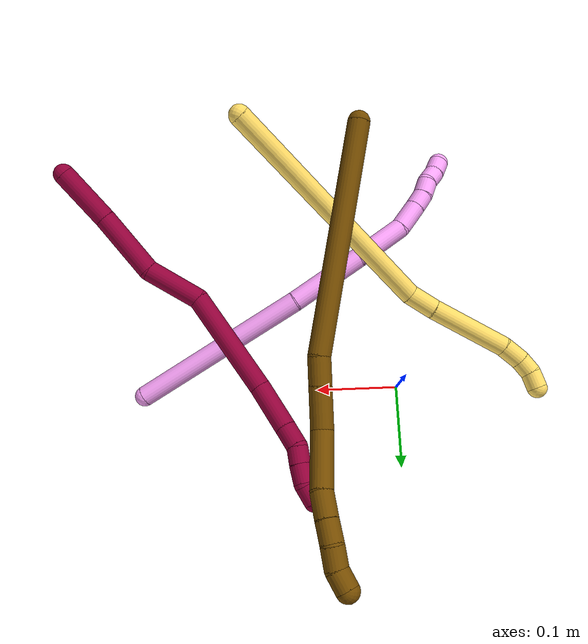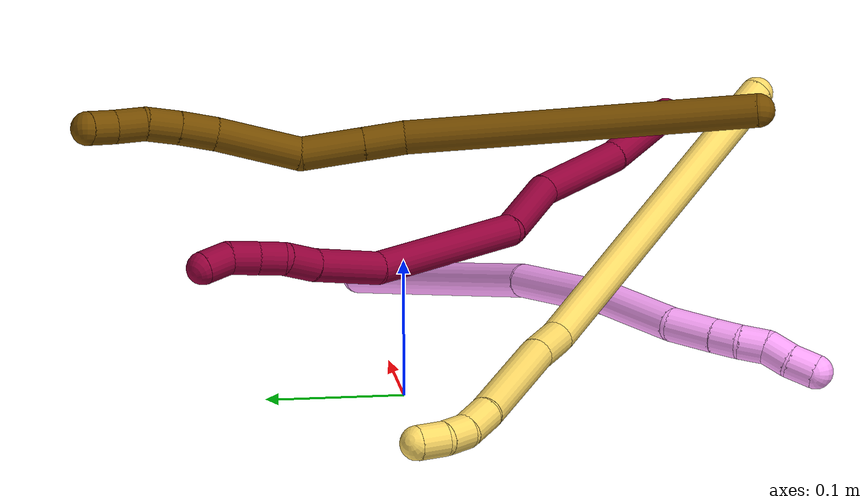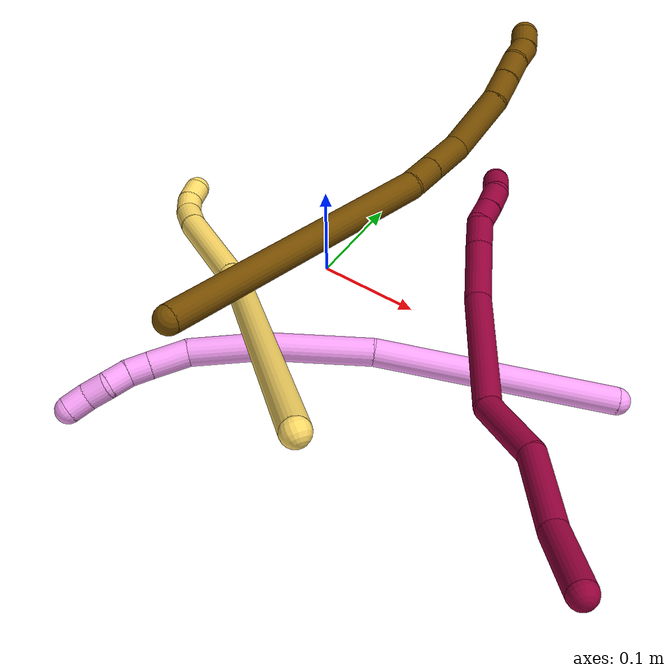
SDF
<sdf version="1.7">
 <world name="default">
  <model name="4">
   <static>0</static>
   <link name="4">
    <collision name="collision-cylinder-e_1_1_4">
     <pose>-0.071578 -0.064236 -0.054795 2.27705 -0.703193 -1.34349</pose>
     <geometry><cylinder><radius>0.0125</radius><length>0.221379</length></cylinder></geometry>
     <surface>
      <friction><ode><mu>1.16</mu><mu2>1.16</mu2><slip1>0</slip1><slip2>0</slip2></ode></friction>
      <contact><ode><kp>1e+06</kp><kd>1</kd><max_vel>0</max_vel><min_depth>0.001</min_depth></ode></contact>
     </surface>
    </collision>
    <visual name="visual-cylinder-e_1_1_4">
     <pose>-0.071578 -0.064236 -0.054795 2.27705 -0.703193 -1.34349</pose>
     <geometry><cylinder><radius>0.0125</radius><length>0.221379</length></cylinder></geometry>
     <material><ambient>1 0.65098 0.996078 1</ambient></material>
    </visual>
    <collision name="collision-cylinder-e_2_4_5">
     <pose>-0.170381 -0.161442 -0.12969 2.11828 -0.6141 -1.02806</pose>
     <geometry><cylinder><radius>0.0125</radius><length>0.094493</length></cylinder></geometry>
     <surface>
      <friction><ode><mu>1.16</mu><mu2>1.16</mu2><slip1>0</slip1><slip2>0</slip2></ode></friction>
      <contact><ode><kp>1e+06</kp><kd>1</kd><max_vel>0</max_vel><min_depth>0.001</min_depth></ode></contact>
     </surface>
    </collision>
    <visual name="visual-cylinder-e_2_4_5">
     <pose>-0.170381 -0.161442 -0.12969 2.11828 -0.6141 -1.02806</pose>
     <geometry><cylinder><radius>0.0125</radius><length>0.094493</length></cylinder></geometry>
     <material><ambient>1 0.65098 0.996078 1</ambient></material>
    </visual>
    <collision name="collision-cylinder-e_3_5_6">
     <pose>-0.213878 -0.221742 -0.162287 1.99966 -0.496289 -0.751419</pose>
     <geometry><cylinder><radius>0.0125</radius><length>0.068348</length></cylinder></geometry>
     <surface>
      <friction><ode><mu>1.16</mu><mu2>1.16</mu2><slip1>0</slip1><slip2>0</slip2></ode></friction>
      <contact><ode><kp>1e+06</kp><kd>1</kd><max_vel>0</max_vel><min_depth>0.001</min_depth></ode></contact>
     </surface>
    </collision>
    <visual name="visual-cylinder-e_3_5_6">
     <pose>-0.213878 -0.221742 -0.162287 1.99966 -0.496289 -0.751419</pose>
     <geometry><cylinder><radius>0.0125</radius><length>0.068348</length></cylinder></geometry>
     <material><ambient>1 0.65098 0.996078 1</ambient></material>
    </visual>
    <collision name="collision-cylinder-e_4_6_7">
     <pose>-0.239555 -0.264052 -0.175936 1.64759 -0.559287 -0.601417</pose>
     <geometry><cylinder><radius>0.0125</radius><length>0.035452</length></cylinder></geometry>
     <surface>
      <friction><ode><mu>1.16</mu><mu2>1.16</mu2><slip1>0</slip1><slip2>0</slip2></ode></friction>
      <contact><ode><kp>1e+06</kp><kd>1</kd><max_vel>0</max_vel><min_depth>0.001</min_depth></ode></contact>
     </surface>
    </collision>
    <visual name="visual-cylinder-e_4_6_7">
     <pose>-0.239555 -0.264052 -0.175936 1.64759 -0.559287 -0.601417</pose>
     <geometry><cylinder><radius>0.0125</radius><length>0.035452</length></cylinder></geometry>
     <material><ambient>1 0.65098 0.996078 1</ambient></material>
    </visual>
    <collision name="collision-cylinder-e_5_7_8">
     <pose>-0.254431 -0.287499 -0.177401 1.60769 -0.573443 -0.593778</pose>
     <geometry><cylinder><radius>0.0125</radius><length>0.020168</length></cylinder></geometry>
     <surface>
      <friction><ode><mu>1.16</mu><mu2>1.16</mu2><slip1>0</slip1><slip2>0</slip2></ode></friction>
      <contact><ode><kp>1e+06</kp><kd>1</kd><max_vel>0</max_vel><min_depth>0.001</min_depth></ode></contact>
     </surface>
    </collision>
    <visual name="visual-cylinder-e_5_7_8">
     <pose>-0.254431 -0.287499 -0.177401 1.60769 -0.573443 -0.593778</pose>
     <geometry><cylinder><radius>0.0125</radius><length>0.020168</length></cylinder></geometry>
     <material><ambient>1 0.65098 0.996078 1</ambient></material>
    </visual>
    <collision name="collision-cylinder-e_6_8_9">
     <pose>-0.265263 -0.304254 -0.17568 1.33023 -0.560764 -0.444272</pose>
     <geometry><cylinder><radius>0.0125</radius><length>0.02016</length></cylinder></geometry>
     <surface>
      <friction><ode><mu>1.16</mu><mu2>1.16</mu2><slip1>0</slip1><slip2>0</slip2></ode></friction>
      <contact><ode><kp>1e+06</kp><kd>1</kd><max_vel>0</max_vel><min_depth>0.001</min_depth></ode></contact>
     </surface>
    </collision>
    <visual name="visual-cylinder-e_6_8_9">
     <pose>-0.265263 -0.304254 -0.17568 1.33023 -0.560764 -0.444272</pose>
     <geometry><cylinder><radius>0.0125</radius><length>0.02016</length></cylinder></geometry>
     <material><ambient>1 0.65098 0.996078 1</ambient></material>
    </visual>
    <collision name="collision-cylinder-e_7_9_10">
     <pose>-0.273346 -0.322163 -0.173923 1.59963 -0.275687 -0.283647</pose>
     <geometry><cylinder><radius>0.0125</radius><length>0.02</length></cylinder></geometry>
     <surface>
      <friction><ode><mu>1.16</mu><mu2>1.16</mu2><slip1>0</slip1><slip2>0</slip2></ode></friction>
      <contact><ode><kp>1e+06</kp><kd>1</kd><max_vel>0</max_vel><min_depth>0.001</min_depth></ode></contact>
     </surface>
    </collision>
    <visual name="visual-cylinder-e_7_9_10">
     <pose>-0.273346 -0.322163 -0.173923 1.59963 -0.275687 -0.283647</pose>
     <geometry><cylinder><radius>0.0125</radius><length>0.02</length></cylinder></geometry>
     <material><ambient>1 0.65098 0.996078 1</ambient></material>
    </visual>
    <collision name="collision-cylinder-e_8_10_2">
     <pose>-0.27961 -0.341012 -0.172701 1.40971 -0.362074 -0.308918</pose>
     <geometry><cylinder><radius>0.0125</radius><length>0.02</length></cylinder></geometry>
     <surface>
      <friction><ode><mu>1.16</mu><mu2>1.16</mu2><slip1>0</slip1><slip2>0</slip2></ode></friction>
      <contact><ode><kp>1e+06</kp><kd>1</kd><max_vel>0</max_vel><min_depth>0.001</min_depth></ode></contact>
     </surface>
    </collision>
    <visual name="visual-cylinder-e_8_10_2">
     <pose>-0.27961 -0.341012 -0.172701 1.40971 -0.362074 -0.308918</pose>
     <geometry><cylinder><radius>0.0125</radius><length>0.02</length></cylinder></geometry>
     <material><ambient>1 0.65098 0.996078 1</ambient></material>
    </visual>
    <collision name="collision-sphere-2">
     <pose>-0.283152 -0.350242 -0.171201 0 -0 0</pose>
     <geometry><sphere><radius>0.0125</radius></sphere></geometry>
     <surface>
      <friction><ode><mu>1.16</mu><mu2>1.16</mu2><slip1>0</slip1><slip2>0</slip2></ode></friction>
      <contact><ode><kp>1e+06</kp><kd>1</kd><max_vel>0</max_vel><min_depth>0.001</min_depth></ode></contact>
     </surface>
    </collision>
    <visual name="visual-sphere-2">
     <pose>-0.283152 -0.350242 -0.171201 0 -0 0</pose>
     <geometry><sphere><radius>0.0125</radius></sphere></geometry>
     <material><ambient>1 0.65098 0.996078 1</ambient></material>
    </visual>
    <collision name="collision-sphere-10">
     <pose>-0.276068 -0.331781 -0.174201 0 -0 0</pose>
     <geometry><sphere><radius>0.0125</radius></sphere></geometry>
     <surface>
      <friction><ode><mu>1.16</mu><mu2>1.16</mu2><slip1>0</slip1><slip2>0</slip2></ode></friction>
      <contact><ode><kp>1e+06</kp><kd>1</kd><max_vel>0</max_vel><min_depth>0.001</min_depth></ode></contact>
     </surface>
    </collision>
    <visual name="visual-sphere-10">
     <pose>-0.276068 -0.331781 -0.174201 0 -0 0</pose>
     <geometry><sphere><radius>0.0125</radius></sphere></geometry>
     <material><ambient>1 0.65098 0.996078 1</ambient></material>
    </visual>
    <collision name="collision-sphere-9">
     <pose>-0.270624 -0.312545 -0.173646 0 -0 0</pose>
     <geometry><sphere><radius>0.0125</radius></sphere></geometry>
     <surface>
      <friction><ode><mu>1.16</mu><mu2>1.16</mu2><slip1>0</slip1><slip2>0</slip2></ode></friction>
      <contact><ode><kp>1e+06</kp><kd>1</kd><max_vel>0</max_vel><min_depth>0.001</min_depth></ode></contact>
     </surface>
    </collision>
    <visual name="visual-sphere-9">
     <pose>-0.270624 -0.312545 -0.173646 0 -0 0</pose>
     <geometry><sphere><radius>0.0125</radius></sphere></geometry>
     <material><ambient>1 0.65098 0.996078 1</ambient></material>
    </visual>
    <collision name="collision-sphere-4">
     <pose>-0.143156 -0.128471 -0.10959 0 -0 0</pose>
     <geometry><sphere><radius>0.0125</radius></sphere></geometry>
     <surface>
      <friction><ode><mu>1.16</mu><mu2>1.16</mu2><slip1>0</slip1><slip2>0</slip2></ode></friction>
      <contact><ode><kp>1e+06</kp><kd>1</kd><max_vel>0</max_vel><min_depth>0.001</min_depth></ode></contact>
     </surface>
    </collision>
    <visual name="visual-sphere-4">
     <pose>-0.143156 -0.128471 -0.10959 0 -0 0</pose>
     <geometry><sphere><radius>0.0125</radius></sphere></geometry>
     <material><ambient>1 0.65098 0.996078 1</ambient></material>
    </visual>
    <collision name="collision-sphere-1">
     <geometry><sphere><radius>0.0125</radius></sphere></geometry>
     <surface>
      <friction><ode><mu>1.16</mu><mu2>1.16</mu2><slip1>0</slip1><slip2>0</slip2></ode></friction>
      <contact><ode><kp>1e+06</kp><kd>1</kd><max_vel>0</max_vel><min_depth>0.001</min_depth></ode></contact>
     </surface>
    </collision>
    <visual name="visual-sphere-1">
     <geometry><sphere><radius>0.0125</radius></sphere></geometry>
     <material><ambient>1 0.65098 0.996078 1</ambient></material>
    </visual>
    <collision name="collision-sphere-8">
     <pose>-0.259902 -0.295964 -0.177713 0 -0 0</pose>
     <geometry><sphere><radius>0.0125</radius></sphere></geometry>
     <surface>
      <friction><ode><mu>1.16</mu><mu2>1.16</mu2><slip1>0</slip1><slip2>0</slip2></ode></friction>
      <contact><ode><kp>1e+06</kp><kd>1</kd><max_vel>0</max_vel><min_depth>0.001</min_depth></ode></contact>
     </surface>
    </collision>
    <visual name="visual-sphere-8">
     <pose>-0.259902 -0.295964 -0.177713 0 -0 0</pose>
     <geometry><sphere><radius>0.0125</radius></sphere></geometry>
     <material><ambient>1 0.65098 0.996078 1</ambient></material>
    </visual>
    <collision name="collision-sphere-5">
     <pose>-0.197605 -0.194412 -0.14979 0 -0 0</pose>
     <geometry><sphere><radius>0.0125</radius></sphere></geometry>
     <surface>
      <friction><ode><mu>1.16</mu><mu2>1.16</mu2><slip1>0</slip1><slip2>0</slip2></ode></friction>
      <contact><ode><kp>1e+06</kp><kd>1</kd><max_vel>0</max_vel><min_depth>0.001</min_depth></ode></contact>
     </surface>
    </collision>
    <visual name="visual-sphere-5">
     <pose>-0.197605 -0.194412 -0.14979 0 -0 0</pose>
     <geometry><sphere><radius>0.0125</radius></sphere></geometry>
     <material><ambient>1 0.65098 0.996078 1</ambient></material>
    </visual>
    <collision name="collision-sphere-6">
     <pose>-0.23015 -0.249071 -0.174783 0 -0 0</pose>
     <geometry><sphere><radius>0.0125</radius></sphere></geometry>
     <surface>
      <friction><ode><mu>1.16</mu><mu2>1.16</mu2><slip1>0</slip1><slip2>0</slip2></ode></friction>
      <contact><ode><kp>1e+06</kp><kd>1</kd><max_vel>0</max_vel><min_depth>0.001</min_depth></ode></contact>
     </surface>
    </collision>
    <visual name="visual-sphere-6">
     <pose>-0.23015 -0.249071 -0.174783 0 -0 0</pose>
     <geometry><sphere><radius>0.0125</radius></sphere></geometry>
     <material><ambient>1 0.65098 0.996078 1</ambient></material>
    </visual>
    <collision name="collision-sphere-7">
     <pose>-0.24896 -0.279033 -0.177088 0 -0 0</pose>
     <geometry><sphere><radius>0.0125</radius></sphere></geometry>
     <surface>
      <friction><ode><mu>1.16</mu><mu2>1.16</mu2><slip1>0</slip1><slip2>0</slip2></ode></friction>
      <contact><ode><kp>1e+06</kp><kd>1</kd><max_vel>0</max_vel><min_depth>0.001</min_depth></ode></contact>
     </surface>
    </collision>
    <visual name="visual-sphere-7">
     <pose>-0.24896 -0.279033 -0.177088 0 -0 0</pose>
     <geometry><sphere><radius>0.0125</radius></sphere></geometry>
     <material><ambient>1 0.65098 0.996078 1</ambient></material>
    </visual>
    <inertial>
     <pose>-0.153189 -0.158376 -0.111533 0 -0 0</pose>
     <mass>0.5</mass>
     <inertia>
      <ixx>-0.000559</ixx>
      <ixy>0</ixy>
      <ixz>0</ixz>
      <iyy>-0.000462</iyy>
      <iyz>0</iyz>
      <izz>0.001253</izz>
     </inertia>
    </inertial>
   </link>
   <pose>0.314451 -0.000854 0.011774 1.72758 0.881052 1.12341</pose>
  </model>
  <model name="5">
   <static>0</static>
   <link name="5">
    <collision name="collision-cylinder-e_1_1_4">
     <pose>-0.100143 0.053439 -0.094796 -2.62827 -0.743891 1.95716</pose>
     <geometry><cylinder><radius>0.0125</radius><length>0.295775</length></cylinder></geometry>
     <surface>
      <friction><ode><mu>1.16</mu><mu2>1.16</mu2><slip1>0</slip1><slip2>0</slip2></ode></friction>
      <contact><ode><kp>1e+06</kp><kd>1</kd><max_vel>0</max_vel><min_depth>0.001</min_depth></ode></contact>
     </surface>
    </collision>
    <visual name="visual-cylinder-e_1_1_4">
     <pose>-0.100143 0.053439 -0.094796 -2.62827 -0.743891 1.95716</pose>
     <geometry><cylinder><radius>0.0125</radius><length>0.295775</length></cylinder></geometry>
     <material><ambient>1 0.858824 0.4 1</ambient></material>
    </visual>
    <collision name="collision-cylinder-e_2_4_5">
     <pose>-0.207329 0.112442 -0.204763 -2.79011 -0.411046 1.7305</pose>
     <geometry><cylinder><radius>0.0125</radius><length>0.035253</length></cylinder></geometry>
     <surface>
      <friction><ode><mu>1.16</mu><mu2>1.16</mu2><slip1>0</slip1><slip2>0</slip2></ode></friction>
      <contact><ode><kp>1e+06</kp><kd>1</kd><max_vel>0</max_vel><min_depth>0.001</min_depth></ode></contact>
     </surface>
    </collision>
    <visual name="visual-cylinder-e_2_4_5">
     <pose>-0.207329 0.112442 -0.204763 -2.79011 -0.411046 1.7305</pose>
     <geometry><cylinder><radius>0.0125</radius><length>0.035253</length></cylinder></geometry>
     <material><ambient>1 0.858824 0.4 1</ambient></material>
    </visual>
    <collision name="collision-cylinder-e_3_5_6">
     <pose>-0.233085 0.138073 -0.261732 -2.69399 -0.383602 1.41264</pose>
     <geometry><cylinder><radius>0.0125</radius><length>0.100001</length></cylinder></geometry>
     <surface>
      <friction><ode><mu>1.16</mu><mu2>1.16</mu2><slip1>0</slip1><slip2>0</slip2></ode></friction>
      <contact><ode><kp>1e+06</kp><kd>1</kd><max_vel>0</max_vel><min_depth>0.001</min_depth></ode></contact>
     </surface>
    </collision>
    <visual name="visual-cylinder-e_3_5_6">
     <pose>-0.233085 0.138073 -0.261732 -2.69399 -0.383602 1.41264</pose>
     <geometry><cylinder><radius>0.0125</radius><length>0.100001</length></cylinder></geometry>
     <material><ambient>1 0.858824 0.4 1</ambient></material>
    </visual>
    <collision name="collision-cylinder-e_4_6_7">
     <pose>-0.259034 0.162336 -0.314703 -2.78232 -0.54505 1.98917</pose>
     <geometry><cylinder><radius>0.0125</radius><length>0.027913</length></cylinder></geometry>
     <surface>
      <friction><ode><mu>1.16</mu><mu2>1.16</mu2><slip1>0</slip1><slip2>0</slip2></ode></friction>
      <contact><ode><kp>1e+06</kp><kd>1</kd><max_vel>0</max_vel><min_depth>0.001</min_depth></ode></contact>
     </surface>
    </collision>
    <visual name="visual-cylinder-e_4_6_7">
     <pose>-0.259034 0.162336 -0.314703 -2.78232 -0.54505 1.98917</pose>
     <geometry><cylinder><radius>0.0125</radius><length>0.027913</length></cylinder></geometry>
     <material><ambient>1 0.858824 0.4 1</ambient></material>
    </visual>
    <collision name="collision-cylinder-e_5_7_8">
     <pose>-0.271741 0.166501 -0.334337 3.13789 -0.57395 -3.12904</pose>
     <geometry><cylinder><radius>0.0125</radius><length>0.020153</length></cylinder></geometry>
     <surface>
      <friction><ode><mu>1.16</mu><mu2>1.16</mu2><slip1>0</slip1><slip2>0</slip2></ode></friction>
      <contact><ode><kp>1e+06</kp><kd>1</kd><max_vel>0</max_vel><min_depth>0.001</min_depth></ode></contact>
     </surface>
    </collision>
    <visual name="visual-cylinder-e_5_7_8">
     <pose>-0.271741 0.166501 -0.334337 3.13789 -0.57395 -3.12904</pose>
     <geometry><cylinder><radius>0.0125</radius><length>0.020153</length></cylinder></geometry>
     <material><ambient>1 0.858824 0.4 1</ambient></material>
    </visual>
    <collision name="collision-cylinder-e_6_8_2">
     <pose>-0.28405 0.163564 -0.350151 2.76522 -0.713114 -2.19633</pose>
     <geometry><cylinder><radius>0.0125</radius><length>0.020906</length></cylinder></geometry>
     <surface>
      <friction><ode><mu>1.16</mu><mu2>1.16</mu2><slip1>0</slip1><slip2>0</slip2></ode></friction>
      <contact><ode><kp>1e+06</kp><kd>1</kd><max_vel>0</max_vel><min_depth>0.001</min_depth></ode></contact>
     </surface>
    </collision>
    <visual name="visual-cylinder-e_6_8_2">
     <pose>-0.28405 0.163564 -0.350151 2.76522 -0.713114 -2.19633</pose>
     <geometry><cylinder><radius>0.0125</radius><length>0.020906</length></cylinder></geometry>
     <material><ambient>1 0.858824 0.4 1</ambient></material>
    </visual>
    <collision name="collision-sphere-2">
     <pose>-0.290888 0.160658 -0.357504 0 -0 0</pose>
     <geometry><sphere><radius>0.0125</radius></sphere></geometry>
     <surface>
      <friction><ode><mu>1.16</mu><mu2>1.16</mu2><slip1>0</slip1><slip2>0</slip2></ode></friction>
      <contact><ode><kp>1e+06</kp><kd>1</kd><max_vel>0</max_vel><min_depth>0.001</min_depth></ode></contact>
     </surface>
    </collision>
    <visual name="visual-sphere-2">
     <pose>-0.290888 0.160658 -0.357504 0 -0 0</pose>
     <geometry><sphere><radius>0.0125</radius></sphere></geometry>
     <material><ambient>1 0.858824 0.4 1</ambient></material>
    </visual>
    <collision name="collision-sphere-4">
     <pose>-0.200285 0.106879 -0.189592 0 -0 0</pose>
     <geometry><sphere><radius>0.0125</radius></sphere></geometry>
     <surface>
      <friction><ode><mu>1.16</mu><mu2>1.16</mu2><slip1>0</slip1><slip2>0</slip2></ode></friction>
      <contact><ode><kp>1e+06</kp><kd>1</kd><max_vel>0</max_vel><min_depth>0.001</min_depth></ode></contact>
     </surface>
    </collision>
    <visual name="visual-sphere-4">
     <pose>-0.200285 0.106879 -0.189592 0 -0 0</pose>
     <geometry><sphere><radius>0.0125</radius></sphere></geometry>
     <material><ambient>1 0.858824 0.4 1</ambient></material>
    </visual>
    <collision name="collision-sphere-1">
     <geometry><sphere><radius>0.0125</radius></sphere></geometry>
     <surface>
      <friction><ode><mu>1.16</mu><mu2>1.16</mu2><slip1>0</slip1><slip2>0</slip2></ode></friction>
      <contact><ode><kp>1e+06</kp><kd>1</kd><max_vel>0</max_vel><min_depth>0.001</min_depth></ode></contact>
     </surface>
    </collision>
    <visual name="visual-sphere-1">
     <geometry><sphere><radius>0.0125</radius></sphere></geometry>
     <material><ambient>1 0.858824 0.4 1</ambient></material>
    </visual>
    <collision name="collision-sphere-8">
     <pose>-0.277212 0.16647 -0.342799 0 -0 0</pose>
     <geometry><sphere><radius>0.0125</radius></sphere></geometry>
     <surface>
      <friction><ode><mu>1.16</mu><mu2>1.16</mu2><slip1>0</slip1><slip2>0</slip2></ode></friction>
      <contact><ode><kp>1e+06</kp><kd>1</kd><max_vel>0</max_vel><min_depth>0.001</min_depth></ode></contact>
     </surface>
    </collision>
    <visual name="visual-sphere-8">
     <pose>-0.277212 0.16647 -0.342799 0 -0 0</pose>
     <geometry><sphere><radius>0.0125</radius></sphere></geometry>
     <material><ambient>1 0.858824 0.4 1</ambient></material>
    </visual>
    <collision name="collision-sphere-5">
     <pose>-0.214372 0.118005 -0.219933 0 -0 0</pose>
     <geometry><sphere><radius>0.0125</radius></sphere></geometry>
     <surface>
      <friction><ode><mu>1.16</mu><mu2>1.16</mu2><slip1>0</slip1><slip2>0</slip2></ode></friction>
      <contact><ode><kp>1e+06</kp><kd>1</kd><max_vel>0</max_vel><min_depth>0.001</min_depth></ode></contact>
     </surface>
    </collision>
    <visual name="visual-sphere-5">
     <pose>-0.214372 0.118005 -0.219933 0 -0 0</pose>
     <geometry><sphere><radius>0.0125</radius></sphere></geometry>
     <material><ambient>1 0.858824 0.4 1</ambient></material>
    </visual>
    <collision name="collision-sphere-6">
     <pose>-0.251798 0.15814 -0.303531 0 -0 0</pose>
     <geometry><sphere><radius>0.0125</radius></sphere></geometry>
     <surface>
      <friction><ode><mu>1.16</mu><mu2>1.16</mu2><slip1>0</slip1><slip2>0</slip2></ode></friction>
      <contact><ode><kp>1e+06</kp><kd>1</kd><max_vel>0</max_vel><min_depth>0.001</min_depth></ode></contact>
     </surface>
    </collision>
    <visual name="visual-sphere-6">
     <pose>-0.251798 0.15814 -0.303531 0 -0 0</pose>
     <geometry><sphere><radius>0.0125</radius></sphere></geometry>
     <material><ambient>1 0.858824 0.4 1</ambient></material>
    </visual>
    <collision name="collision-sphere-7">
     <pose>-0.26627 0.166532 -0.325875 0 -0 0</pose>
     <geometry><sphere><radius>0.0125</radius></sphere></geometry>
     <surface>
      <friction><ode><mu>1.16</mu><mu2>1.16</mu2><slip1>0</slip1><slip2>0</slip2></ode></friction>
      <contact><ode><kp>1e+06</kp><kd>1</kd><max_vel>0</max_vel><min_depth>0.001</min_depth></ode></contact>
     </surface>
    </collision>
    <visual name="visual-sphere-7">
     <pose>-0.26627 0.166532 -0.325875 0 -0 0</pose>
     <geometry><sphere><radius>0.0125</radius></sphere></geometry>
     <material><ambient>1 0.858824 0.4 1</ambient></material>
    </visual>
    <inertial>
     <pose>-0.157765 0.089767 -0.168545 0 -0 0</pose>
     <mass>0.5</mass>
     <inertia>
      <ixx>0.000949</ixx>
      <ixy>0</ixy>
      <ixz>0</ixz>
      <iyy>0.002962</iyy>
      <iyz>0</iyz>
      <izz>0.000658</izz>
     </inertia>
    </inertial>
   </link>
   <pose>0.175127 -0.28694 0.178814 -2.148 -0.799485 -1.7102</pose>
  </model>
  <model name="8">
   <static>0</static>
   <link name="8">
    <collision name="collision-cylinder-e_1_1_4">
     <pose>0.001886 0.000698 -0.034141 -3.12116 0.055166 -2.43222</pose>
     <geometry><cylinder><radius>0.0125</radius><length>0.068401</length></cylinder></geometry>
     <surface>
      <friction><ode><mu>1.16</mu><mu2>1.16</mu2><slip1>0</slip1><slip2>0</slip2></ode></friction>
      <contact><ode><kp>1e+06</kp><kd>1</kd><max_vel>0</max_vel><min_depth>0.001</min_depth></ode></contact>
     </surface>
    </collision>
    <visual name="visual-cylinder-e_1_1_4">
     <pose>0.001886 0.000698 -0.034141 -3.12116 0.055166 -2.43222</pose>
     <geometry><cylinder><radius>0.0125</radius><length>0.068401</length></cylinder></geometry>
     <material><ambient>0.584314 0 0.227451 1</ambient></material>
    </visual>
    <collision name="collision-cylinder-e_2_4_5">
     <pose>0.00181 0.00843 -0.10786 -2.9657 -0.048756 0.539584</pose>
     <geometry><cylinder><radius>0.0125</radius><length>0.080492</length></cylinder></geometry>
     <surface>
      <friction><ode><mu>1.16</mu><mu2>1.16</mu2><slip1>0</slip1><slip2>0</slip2></ode></friction>
      <contact><ode><kp>1e+06</kp><kd>1</kd><max_vel>0</max_vel><min_depth>0.001</min_depth></ode></contact>
     </surface>
    </collision>
    <visual name="visual-cylinder-e_2_4_5">
     <pose>0.00181 0.00843 -0.10786 -2.9657 -0.048756 0.539584</pose>
     <geometry><cylinder><radius>0.0125</radius><length>0.080492</length></cylinder></geometry>
     <material><ambient>0.584314 0 0.227451 1</ambient></material>
    </visual>
    <collision name="collision-cylinder-e_3_5_6">
     <pose>-0.00667 0.009884 -0.180335 2.97357 -0.192946 -1.70944</pose>
     <geometry><cylinder><radius>0.0125</radius><length>0.067995</length></cylinder></geometry>
     <surface>
      <friction><ode><mu>1.16</mu><mu2>1.16</mu2><slip1>0</slip1><slip2>0</slip2></ode></friction>
      <contact><ode><kp>1e+06</kp><kd>1</kd><max_vel>0</max_vel><min_depth>0.001</min_depth></ode></contact>
     </surface>
    </collision>
    <visual name="visual-cylinder-e_3_5_6">
     <pose>-0.00667 0.009884 -0.180335 2.97357 -0.192946 -1.70944</pose>
     <geometry><cylinder><radius>0.0125</radius><length>0.067995</length></cylinder></geometry>
     <material><ambient>0.584314 0 0.227451 1</ambient></material>
    </visual>
    <collision name="collision-cylinder-e_4_6_7">
     <pose>-0.017642 0.024419 -0.275182 -2.82764 -0.068246 0.42484</pose>
     <geometry><cylinder><radius>0.0125</radius><length>0.130571</length></cylinder></geometry>
     <surface>
      <friction><ode><mu>1.16</mu><mu2>1.16</mu2><slip1>0</slip1><slip2>0</slip2></ode></friction>
      <contact><ode><kp>1e+06</kp><kd>1</kd><max_vel>0</max_vel><min_depth>0.001</min_depth></ode></contact>
     </surface>
    </collision>
    <visual name="visual-cylinder-e_4_6_7">
     <pose>-0.017642 0.024419 -0.275182 -2.82764 -0.068246 0.42484</pose>
     <geometry><cylinder><radius>0.0125</radius><length>0.130571</length></cylinder></geometry>
     <material><ambient>0.584314 0 0.227451 1</ambient></material>
    </visual>
    <collision name="collision-cylinder-e_5_7_8">
     <pose>-0.028908 0.059126 -0.362255 -2.61537 -0.230381 0.811436</pose>
     <geometry><cylinder><radius>0.0125</radius><length>0.059684</length></cylinder></geometry>
     <surface>
      <friction><ode><mu>1.16</mu><mu2>1.16</mu2><slip1>0</slip1><slip2>0</slip2></ode></friction>
      <contact><ode><kp>1e+06</kp><kd>1</kd><max_vel>0</max_vel><min_depth>0.001</min_depth></ode></contact>
     </surface>
    </collision>
    <visual name="visual-cylinder-e_5_7_8">
     <pose>-0.028908 0.059126 -0.362255 -2.61537 -0.230381 0.811436</pose>
     <geometry><cylinder><radius>0.0125</radius><length>0.059684</length></cylinder></geometry>
     <material><ambient>0.584314 0 0.227451 1</ambient></material>
    </visual>
    <collision name="collision-cylinder-e_6_8_9">
     <pose>-0.039948 0.08134 -0.397936 -2.51638 -0.313781 0.910342</pose>
     <geometry><cylinder><radius>0.0125</radius><length>0.02738</length></cylinder></geometry>
     <surface>
      <friction><ode><mu>1.16</mu><mu2>1.16</mu2><slip1>0</slip1><slip2>0</slip2></ode></friction>
      <contact><ode><kp>1e+06</kp><kd>1</kd><max_vel>0</max_vel><min_depth>0.001</min_depth></ode></contact>
     </surface>
    </collision>
    <visual name="visual-cylinder-e_6_8_9">
     <pose>-0.039948 0.08134 -0.397936 -2.51638 -0.313781 0.910342</pose>
     <geometry><cylinder><radius>0.0125</radius><length>0.02738</length></cylinder></geometry>
     <material><ambient>0.584314 0 0.227451 1</ambient></material>
    </visual>
    <collision name="collision-cylinder-e_7_9_10">
     <pose>-0.043111 0.095907 -0.415773 -2.37954 0.105242 -0.261452</pose>
     <geometry><cylinder><radius>0.0125</radius><length>0.020234</length></cylinder></geometry>
     <surface>
      <friction><ode><mu>1.16</mu><mu2>1.16</mu2><slip1>0</slip1><slip2>0</slip2></ode></friction>
      <contact><ode><kp>1e+06</kp><kd>1</kd><max_vel>0</max_vel><min_depth>0.001</min_depth></ode></contact>
     </surface>
    </collision>
    <visual name="visual-cylinder-e_7_9_10">
     <pose>-0.043111 0.095907 -0.415773 -2.37954 0.105242 -0.261452</pose>
     <geometry><cylinder><radius>0.0125</radius><length>0.020234</length></cylinder></geometry>
     <material><ambient>0.584314 0 0.227451 1</ambient></material>
    </visual>
    <collision name="collision-cylinder-e_8_10_11">
     <pose>-0.041421 0.110174 -0.43161 -2.43404 0.055616 -0.150349</pose>
     <geometry><cylinder><radius>0.0125</radius><length>0.02256</length></cylinder></geometry>
     <surface>
      <friction><ode><mu>1.16</mu><mu2>1.16</mu2><slip1>0</slip1><slip2>0</slip2></ode></friction>
      <contact><ode><kp>1e+06</kp><kd>1</kd><max_vel>0</max_vel><min_depth>0.001</min_depth></ode></contact>
     </surface>
    </collision>
    <visual name="visual-cylinder-e_8_10_11">
     <pose>-0.041421 0.110174 -0.43161 -2.43404 0.055616 -0.150349</pose>
     <geometry><cylinder><radius>0.0125</radius><length>0.02256</length></cylinder></geometry>
     <material><ambient>0.584314 0 0.227451 1</ambient></material>
    </visual>
    <collision name="collision-cylinder-e_9_11_2">
     <pose>-0.039804 0.12073 -0.450994 -2.8511 0.087375 -0.580813</pose>
     <geometry><cylinder><radius>0.0125</radius><length>0.022683</length></cylinder></geometry>
     <surface>
      <friction><ode><mu>1.16</mu><mu2>1.16</mu2><slip1>0</slip1><slip2>0</slip2></ode></friction>
      <contact><ode><kp>1e+06</kp><kd>1</kd><max_vel>0</max_vel><min_depth>0.001</min_depth></ode></contact>
     </surface>
    </collision>
    <visual name="visual-cylinder-e_9_11_2">
     <pose>-0.039804 0.12073 -0.450994 -2.8511 0.087375 -0.580813</pose>
     <geometry><cylinder><radius>0.0125</radius><length>0.022683</length></cylinder></geometry>
     <material><ambient>0.584314 0 0.227451 1</ambient></material>
    </visual>
    <collision name="collision-sphere-2">
     <pose>-0.038814 0.123966 -0.461819 0 -0 0</pose>
     <geometry><sphere><radius>0.0125</radius></sphere></geometry>
     <surface>
      <friction><ode><mu>1.16</mu><mu2>1.16</mu2><slip1>0</slip1><slip2>0</slip2></ode></friction>
      <contact><ode><kp>1e+06</kp><kd>1</kd><max_vel>0</max_vel><min_depth>0.001</min_depth></ode></contact>
     </surface>
    </collision>
    <visual name="visual-sphere-2">
     <pose>-0.038814 0.123966 -0.461819 0 -0 0</pose>
     <geometry><sphere><radius>0.0125</radius></sphere></geometry>
     <material><ambient>0.584314 0 0.227451 1</ambient></material>
    </visual>
    <collision name="collision-sphere-11">
     <pose>-0.040794 0.117494 -0.440169 0 -0 0</pose>
     <geometry><sphere><radius>0.0125</radius></sphere></geometry>
     <surface>
      <friction><ode><mu>1.16</mu><mu2>1.16</mu2><slip1>0</slip1><slip2>0</slip2></ode></friction>
      <contact><ode><kp>1e+06</kp><kd>1</kd><max_vel>0</max_vel><min_depth>0.001</min_depth></ode></contact>
     </surface>
    </collision>
    <visual name="visual-sphere-11">
     <pose>-0.040794 0.117494 -0.440169 0 -0 0</pose>
     <geometry><sphere><radius>0.0125</radius></sphere></geometry>
     <material><ambient>0.584314 0 0.227451 1</ambient></material>
    </visual>
    <collision name="collision-sphere-10">
     <pose>-0.042048 0.102854 -0.423051 0 -0 0</pose>
     <geometry><sphere><radius>0.0125</radius></sphere></geometry>
     <surface>
      <friction><ode><mu>1.16</mu><mu2>1.16</mu2><slip1>0</slip1><slip2>0</slip2></ode></friction>
      <contact><ode><kp>1e+06</kp><kd>1</kd><max_vel>0</max_vel><min_depth>0.001</min_depth></ode></contact>
     </surface>
    </collision>
    <visual name="visual-sphere-10">
     <pose>-0.042048 0.102854 -0.423051 0 -0 0</pose>
     <geometry><sphere><radius>0.0125</radius></sphere></geometry>
     <material><ambient>0.584314 0 0.227451 1</ambient></material>
    </visual>
    <collision name="collision-sphere-9">
     <pose>-0.044173 0.088961 -0.408494 0 -0 0</pose>
     <geometry><sphere><radius>0.0125</radius></sphere></geometry>
     <surface>
      <friction><ode><mu>1.16</mu><mu2>1.16</mu2><slip1>0</slip1><slip2>0</slip2></ode></friction>
      <contact><ode><kp>1e+06</kp><kd>1</kd><max_vel>0</max_vel><min_depth>0.001</min_depth></ode></contact>
     </surface>
    </collision>
    <visual name="visual-sphere-9">
     <pose>-0.044173 0.088961 -0.408494 0 -0 0</pose>
     <geometry><sphere><radius>0.0125</radius></sphere></geometry>
     <material><ambient>0.584314 0 0.227451 1</ambient></material>
    </visual>
    <collision name="collision-sphere-4">
     <pose>0.003771 0.001396 -0.068282 0 -0 0</pose>
     <geometry><sphere><radius>0.0125</radius></sphere></geometry>
     <surface>
      <friction><ode><mu>1.16</mu><mu2>1.16</mu2><slip1>0</slip1><slip2>0</slip2></ode></friction>
      <contact><ode><kp>1e+06</kp><kd>1</kd><max_vel>0</max_vel><min_depth>0.001</min_depth></ode></contact>
     </surface>
    </collision>
    <visual name="visual-sphere-4">
     <pose>0.003771 0.001396 -0.068282 0 -0 0</pose>
     <geometry><sphere><radius>0.0125</radius></sphere></geometry>
     <material><ambient>0.584314 0 0.227451 1</ambient></material>
    </visual>
    <collision name="collision-sphere-1">
     <geometry><sphere><radius>0.0125</radius></sphere></geometry>
     <surface>
      <friction><ode><mu>1.16</mu><mu2>1.16</mu2><slip1>0</slip1><slip2>0</slip2></ode></friction>
      <contact><ode><kp>1e+06</kp><kd>1</kd><max_vel>0</max_vel><min_depth>0.001</min_depth></ode></contact>
     </surface>
    </collision>
    <visual name="visual-sphere-1">
     <geometry><sphere><radius>0.0125</radius></sphere></geometry>
     <material><ambient>0.584314 0 0.227451 1</ambient></material>
    </visual>
    <collision name="collision-sphere-8">
     <pose>-0.035722 0.073719 -0.387378 0 -0 0</pose>
     <geometry><sphere><radius>0.0125</radius></sphere></geometry>
     <surface>
      <friction><ode><mu>1.16</mu><mu2>1.16</mu2><slip1>0</slip1><slip2>0</slip2></ode></friction>
      <contact><ode><kp>1e+06</kp><kd>1</kd><max_vel>0</max_vel><min_depth>0.001</min_depth></ode></contact>
     </surface>
    </collision>
    <visual name="visual-sphere-8">
     <pose>-0.035722 0.073719 -0.387378 0 -0 0</pose>
     <geometry><sphere><radius>0.0125</radius></sphere></geometry>
     <material><ambient>0.584314 0 0.227451 1</ambient></material>
    </visual>
    <collision name="collision-sphere-5">
     <pose>-0.000151 0.015464 -0.147438 0 -0 0</pose>
     <geometry><sphere><radius>0.0125</radius></sphere></geometry>
     <surface>
      <friction><ode><mu>1.16</mu><mu2>1.16</mu2><slip1>0</slip1><slip2>0</slip2></ode></friction>
      <contact><ode><kp>1e+06</kp><kd>1</kd><max_vel>0</max_vel><min_depth>0.001</min_depth></ode></contact>
     </surface>
    </collision>
    <visual name="visual-sphere-5">
     <pose>-0.000151 0.015464 -0.147438 0 -0 0</pose>
     <geometry><sphere><radius>0.0125</radius></sphere></geometry>
     <material><ambient>0.584314 0 0.227451 1</ambient></material>
    </visual>
    <collision name="collision-sphere-6">
     <pose>-0.013189 0.004304 -0.213232 0 -0 0</pose>
     <geometry><sphere><radius>0.0125</radius></sphere></geometry>
     <surface>
      <friction><ode><mu>1.16</mu><mu2>1.16</mu2><slip1>0</slip1><slip2>0</slip2></ode></friction>
      <contact><ode><kp>1e+06</kp><kd>1</kd><max_vel>0</max_vel><min_depth>0.001</min_depth></ode></contact>
     </surface>
    </collision>
    <visual name="visual-sphere-6">
     <pose>-0.013189 0.004304 -0.213232 0 -0 0</pose>
     <geometry><sphere><radius>0.0125</radius></sphere></geometry>
     <material><ambient>0.584314 0 0.227451 1</ambient></material>
    </visual>
    <collision name="collision-sphere-7">
     <pose>-0.022094 0.044533 -0.337132 0 -0 0</pose>
     <geometry><sphere><radius>0.0125</radius></sphere></geometry>
     <surface>
      <friction><ode><mu>1.16</mu><mu2>1.16</mu2><slip1>0</slip1><slip2>0</slip2></ode></friction>
      <contact><ode><kp>1e+06</kp><kd>1</kd><max_vel>0</max_vel><min_depth>0.001</min_depth></ode></contact>
     </surface>
    </collision>
    <visual name="visual-sphere-7">
     <pose>-0.022094 0.044533 -0.337132 0 -0 0</pose>
     <geometry><sphere><radius>0.0125</radius></sphere></geometry>
     <material><ambient>0.584314 0 0.227451 1</ambient></material>
    </visual>
    <inertial>
     <pose>-0.016022 0.035015 -0.240212 0 -0 0</pose>
     <mass>0.5</mass>
     <inertia>
      <ixx>0.000274</ixx>
      <ixy>0</ixy>
      <ixz>0</ixz>
      <iyy>-0.000111</iyy>
      <iyz>0</iyz>
      <izz>-8.9e-05</izz>
     </inertia>
    </inertial>
   </link>
   <pose>0.387622 -0.252595 0.118635 1.06096 0.863925 0.378408</pose>
  </model>
  <model name="12">
   <static>0</static>
   <link name="12">
    <collision name="collision-cylinder-e_1_1_4">
     <pose>-0.014784 0.128755 -0.003792 -1.60024 -0.114271 0.117678</pose>
     <geometry><cylinder><radius>0.0125</radius><length>0.259312</length></cylinder></geometry>
     <surface>
      <friction><ode><mu>1.16</mu><mu2>1.16</mu2><slip1>0</slip1><slip2>0</slip2></ode></friction>
      <contact><ode><kp>1e+06</kp><kd>1</kd><max_vel>0</max_vel><min_depth>0.001</min_depth></ode></contact>
     </surface>
    </collision>
    <visual name="visual-cylinder-e_1_1_4">
     <pose>-0.014784 0.128755 -0.003792 -1.60024 -0.114271 0.117678</pose>
     <geometry><cylinder><radius>0.0125</radius><length>0.259312</length></cylinder></geometry>
     <material><ambient>0.466667 0.301961 0 1</ambient></material>
    </visual>
    <collision name="collision-cylinder-e_2_4_5">
     <pose>-0.033837 0.272221 -0.010014 -1.73449 -0.278884 0.327902</pose>
     <geometry><cylinder><radius>0.0125</radius><length>0.031021</length></cylinder></geometry>
     <surface>
      <friction><ode><mu>1.16</mu><mu2>1.16</mu2><slip1>0</slip1><slip2>0</slip2></ode></friction>
      <contact><ode><kp>1e+06</kp><kd>1</kd><max_vel>0</max_vel><min_depth>0.001</min_depth></ode></contact>
     </surface>
    </collision>
    <visual name="visual-cylinder-e_2_4_5">
     <pose>-0.033837 0.272221 -0.010014 -1.73449 -0.278884 0.327902</pose>
     <geometry><cylinder><radius>0.0125</radius><length>0.031021</length></cylinder></geometry>
     <material><ambient>0.466667 0.301961 0 1</ambient></material>
    </visual>
    <collision name="collision-cylinder-e_3_5_6">
     <pose>-0.044532 0.309076 -0.016101 -1.73449 -0.278834 0.327843</pose>
     <geometry><cylinder><radius>0.0125</radius><length>0.04669</length></cylinder></geometry>
     <surface>
      <friction><ode><mu>1.16</mu><mu2>1.16</mu2><slip1>0</slip1><slip2>0</slip2></ode></friction>
      <contact><ode><kp>1e+06</kp><kd>1</kd><max_vel>0</max_vel><min_depth>0.001</min_depth></ode></contact>
     </surface>
    </collision>
    <visual name="visual-cylinder-e_3_5_6">
     <pose>-0.044532 0.309076 -0.016101 -1.73449 -0.278834 0.327843</pose>
     <geometry><cylinder><radius>0.0125</radius><length>0.04669</length></cylinder></geometry>
     <material><ambient>0.466667 0.301961 0 1</ambient></material>
    </visual>
    <collision name="collision-cylinder-e_4_6_7">
     <pose>-0.063361 0.3599 -0.013082 -1.3421 -0.398645 0.318061</pose>
     <geometry><cylinder><radius>0.0125</radius><length>0.063905</length></cylinder></geometry>
     <surface>
      <friction><ode><mu>1.16</mu><mu2>1.16</mu2><slip1>0</slip1><slip2>0</slip2></ode></friction>
      <contact><ode><kp>1e+06</kp><kd>1</kd><max_vel>0</max_vel><min_depth>0.001</min_depth></ode></contact>
     </surface>
    </collision>
    <visual name="visual-cylinder-e_4_6_7">
     <pose>-0.063361 0.3599 -0.013082 -1.3421 -0.398645 0.318061</pose>
     <geometry><cylinder><radius>0.0125</radius><length>0.063905</length></cylinder></geometry>
     <material><ambient>0.466667 0.301961 0 1</ambient></material>
    </visual>
    <collision name="collision-cylinder-e_5_7_8">
     <pose>-0.083408 0.400545 -0.005018 -1.45528 -0.565488 0.506423</pose>
     <geometry><cylinder><radius>0.0125</radius><length>0.028532</length></cylinder></geometry>
     <surface>
      <friction><ode><mu>1.16</mu><mu2>1.16</mu2><slip1>0</slip1><slip2>0</slip2></ode></friction>
      <contact><ode><kp>1e+06</kp><kd>1</kd><max_vel>0</max_vel><min_depth>0.001</min_depth></ode></contact>
     </surface>
    </collision>
    <visual name="visual-cylinder-e_5_7_8">
     <pose>-0.083408 0.400545 -0.005018 -1.45528 -0.565488 0.506423</pose>
     <geometry><cylinder><radius>0.0125</radius><length>0.028532</length></cylinder></geometry>
     <material><ambient>0.466667 0.301961 0 1</ambient></material>
    </visual>
    <collision name="collision-cylinder-e_6_8_9">
     <pose>-0.097838 0.423044 -0.003026 -1.51358 -0.571568 0.54134</pose>
     <geometry><cylinder><radius>0.0125</radius><length>0.025092</length></cylinder></geometry>
     <surface>
      <friction><ode><mu>1.16</mu><mu2>1.16</mu2><slip1>0</slip1><slip2>0</slip2></ode></friction>
      <contact><ode><kp>1e+06</kp><kd>1</kd><max_vel>0</max_vel><min_depth>0.001</min_depth></ode></contact>
     </surface>
    </collision>
    <visual name="visual-cylinder-e_6_8_9">
     <pose>-0.097838 0.423044 -0.003026 -1.51358 -0.571568 0.54134</pose>
     <geometry><cylinder><radius>0.0125</radius><length>0.025092</length></cylinder></geometry>
     <material><ambient>0.466667 0.301961 0 1</ambient></material>
    </visual>
    <collision name="collision-cylinder-e_7_9_10">
     <pose>-0.109685 0.444101 -0.004081 -1.72711 -0.443478 0.515772</pose>
     <geometry><cylinder><radius>0.0125</radius><length>0.023585</length></cylinder></geometry>
     <surface>
      <friction><ode><mu>1.16</mu><mu2>1.16</mu2><slip1>0</slip1><slip2>0</slip2></ode></friction>
      <contact><ode><kp>1e+06</kp><kd>1</kd><max_vel>0</max_vel><min_depth>0.001</min_depth></ode></contact>
     </surface>
    </collision>
    <visual name="visual-cylinder-e_7_9_10">
     <pose>-0.109685 0.444101 -0.004081 -1.72711 -0.443478 0.515772</pose>
     <geometry><cylinder><radius>0.0125</radius><length>0.023585</length></cylinder></geometry>
     <material><ambient>0.466667 0.301961 0 1</ambient></material>
    </visual>
    <collision name="collision-cylinder-e_8_10_2">
     <pose>-0.122446 0.462153 -0.007606 -1.81381 -0.78171 0.96953</pose>
     <geometry><cylinder><radius>0.0125</radius><length>0.021863</length></cylinder></geometry>
     <surface>
      <friction><ode><mu>1.16</mu><mu2>1.16</mu2><slip1>0</slip1><slip2>0</slip2></ode></friction>
      <contact><ode><kp>1e+06</kp><kd>1</kd><max_vel>0</max_vel><min_depth>0.001</min_depth></ode></contact>
     </surface>
    </collision>
    <visual name="visual-cylinder-e_8_10_2">
     <pose>-0.122446 0.462153 -0.007606 -1.81381 -0.78171 0.96953</pose>
     <geometry><cylinder><radius>0.0125</radius><length>0.021863</length></cylinder></geometry>
     <material><ambient>0.466667 0.301961 0 1</ambient></material>
    </visual>
    <collision name="collision-sphere-2">
     <pose>-0.130148 0.469683 -0.009473 0 -0 0</pose>
     <geometry><sphere><radius>0.0125</radius></sphere></geometry>
     <surface>
      <friction><ode><mu>1.16</mu><mu2>1.16</mu2><slip1>0</slip1><slip2>0</slip2></ode></friction>
      <contact><ode><kp>1e+06</kp><kd>1</kd><max_vel>0</max_vel><min_depth>0.001</min_depth></ode></contact>
     </surface>
    </collision>
    <visual name="visual-sphere-2">
     <pose>-0.130148 0.469683 -0.009473 0 -0 0</pose>
     <geometry><sphere><radius>0.0125</radius></sphere></geometry>
     <material><ambient>0.466667 0.301961 0 1</ambient></material>
    </visual>
    <collision name="collision-sphere-10">
     <pose>-0.114745 0.454623 -0.005739 0 -0 0</pose>
     <geometry><sphere><radius>0.0125</radius></sphere></geometry>
     <surface>
      <friction><ode><mu>1.16</mu><mu2>1.16</mu2><slip1>0</slip1><slip2>0</slip2></ode></friction>
      <contact><ode><kp>1e+06</kp><kd>1</kd><max_vel>0</max_vel><min_depth>0.001</min_depth></ode></contact>
     </surface>
    </collision>
    <visual name="visual-sphere-10">
     <pose>-0.114745 0.454623 -0.005739 0 -0 0</pose>
     <geometry><sphere><radius>0.0125</radius></sphere></geometry>
     <material><ambient>0.466667 0.301961 0 1</ambient></material>
    </visual>
    <collision name="collision-sphere-9">
     <pose>-0.104625 0.433579 -0.002423 0 -0 0</pose>
     <geometry><sphere><radius>0.0125</radius></sphere></geometry>
     <surface>
      <friction><ode><mu>1.16</mu><mu2>1.16</mu2><slip1>0</slip1><slip2>0</slip2></ode></friction>
      <contact><ode><kp>1e+06</kp><kd>1</kd><max_vel>0</max_vel><min_depth>0.001</min_depth></ode></contact>
     </surface>
    </collision>
    <visual name="visual-sphere-9">
     <pose>-0.104625 0.433579 -0.002423 0 -0 0</pose>
     <geometry><sphere><radius>0.0125</radius></sphere></geometry>
     <material><ambient>0.466667 0.301961 0 1</ambient></material>
    </visual>
    <collision name="collision-sphere-4">
     <pose>-0.029567 0.257509 -0.007584 0 -0 0</pose>
     <geometry><sphere><radius>0.0125</radius></sphere></geometry>
     <surface>
      <friction><ode><mu>1.16</mu><mu2>1.16</mu2><slip1>0</slip1><slip2>0</slip2></ode></friction>
      <contact><ode><kp>1e+06</kp><kd>1</kd><max_vel>0</max_vel><min_depth>0.001</min_depth></ode></contact>
     </surface>
    </collision>
    <visual name="visual-sphere-4">
     <pose>-0.029567 0.257509 -0.007584 0 -0 0</pose>
     <geometry><sphere><radius>0.0125</radius></sphere></geometry>
     <material><ambient>0.466667 0.301961 0 1</ambient></material>
    </visual>
    <collision name="collision-sphere-1">
     <geometry><sphere><radius>0.0125</radius></sphere></geometry>
     <surface>
      <friction><ode><mu>1.16</mu><mu2>1.16</mu2><slip1>0</slip1><slip2>0</slip2></ode></friction>
      <contact><ode><kp>1e+06</kp><kd>1</kd><max_vel>0</max_vel><min_depth>0.001</min_depth></ode></contact>
     </surface>
    </collision>
    <visual name="visual-sphere-1">
     <geometry><sphere><radius>0.0125</radius></sphere></geometry>
     <material><ambient>0.466667 0.301961 0 1</ambient></material>
    </visual>
    <collision name="collision-sphere-8">
     <pose>-0.091052 0.41251 -0.00363 0 -0 0</pose>
     <geometry><sphere><radius>0.0125</radius></sphere></geometry>
     <surface>
      <friction><ode><mu>1.16</mu><mu2>1.16</mu2><slip1>0</slip1><slip2>0</slip2></ode></friction>
      <contact><ode><kp>1e+06</kp><kd>1</kd><max_vel>0</max_vel><min_depth>0.001</min_depth></ode></contact>
     </surface>
    </collision>
    <visual name="visual-sphere-8">
     <pose>-0.091052 0.41251 -0.00363 0 -0 0</pose>
     <geometry><sphere><radius>0.0125</radius></sphere></geometry>
     <material><ambient>0.466667 0.301961 0 1</ambient></material>
    </visual>
    <collision name="collision-sphere-5">
     <pose>-0.038107 0.286933 -0.012443 0 -0 0</pose>
     <geometry><sphere><radius>0.0125</radius></sphere></geometry>
     <surface>
      <friction><ode><mu>1.16</mu><mu2>1.16</mu2><slip1>0</slip1><slip2>0</slip2></ode></friction>
      <contact><ode><kp>1e+06</kp><kd>1</kd><max_vel>0</max_vel><min_depth>0.001</min_depth></ode></contact>
     </surface>
    </collision>
    <visual name="visual-sphere-5">
     <pose>-0.038107 0.286933 -0.012443 0 -0 0</pose>
     <geometry><sphere><radius>0.0125</radius></sphere></geometry>
     <material><ambient>0.466667 0.301961 0 1</ambient></material>
    </visual>
    <collision name="collision-sphere-6">
     <pose>-0.050957 0.331219 -0.019758 0 -0 0</pose>
     <geometry><sphere><radius>0.0125</radius></sphere></geometry>
     <surface>
      <friction><ode><mu>1.16</mu><mu2>1.16</mu2><slip1>0</slip1><slip2>0</slip2></ode></friction>
      <contact><ode><kp>1e+06</kp><kd>1</kd><max_vel>0</max_vel><min_depth>0.001</min_depth></ode></contact>
     </surface>
    </collision>
    <visual name="visual-sphere-6">
     <pose>-0.050957 0.331219 -0.019758 0 -0 0</pose>
     <geometry><sphere><radius>0.0125</radius></sphere></geometry>
     <material><ambient>0.466667 0.301961 0 1</ambient></material>
    </visual>
    <collision name="collision-sphere-7">
     <pose>-0.075764 0.38858 -0.006406 0 -0 0</pose>
     <geometry><sphere><radius>0.0125</radius></sphere></geometry>
     <surface>
      <friction><ode><mu>1.16</mu><mu2>1.16</mu2><slip1>0</slip1><slip2>0</slip2></ode></friction>
      <contact><ode><kp>1e+06</kp><kd>1</kd><max_vel>0</max_vel><min_depth>0.001</min_depth></ode></contact>
     </surface>
    </collision>
    <visual name="visual-sphere-7">
     <pose>-0.075764 0.38858 -0.006406 0 -0 0</pose>
     <geometry><sphere><radius>0.0125</radius></sphere></geometry>
     <material><ambient>0.466667 0.301961 0 1</ambient></material>
    </visual>
    <inertial>
     <pose>-0.042221 0.243768 -0.006727 0 -0 0</pose>
     <mass>0.5</mass>
     <inertia>
      <ixx>0.00166</ixx>
      <ixy>0</ixy>
      <ixz>0</ixz>
      <iyy>0.00021</iyy>
      <iyz>0</iyz>
      <izz>-0.001311</izz>
     </inertia>
    </inertial>
   </link>
   <pose>0.044511 -0.265045 0.194105 -0.136236 0.452671 -0.389913</pose>
  </model>
 </world>
</sdf>
